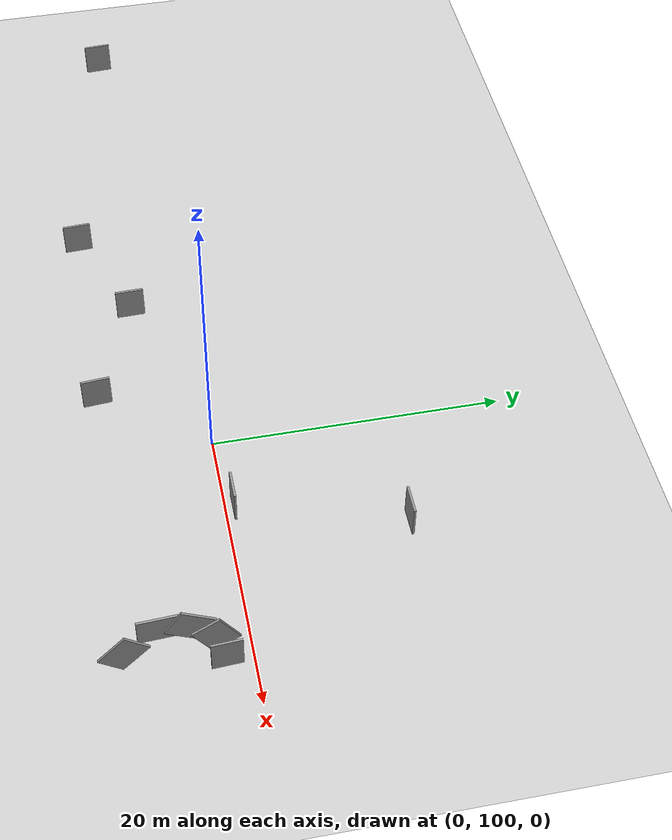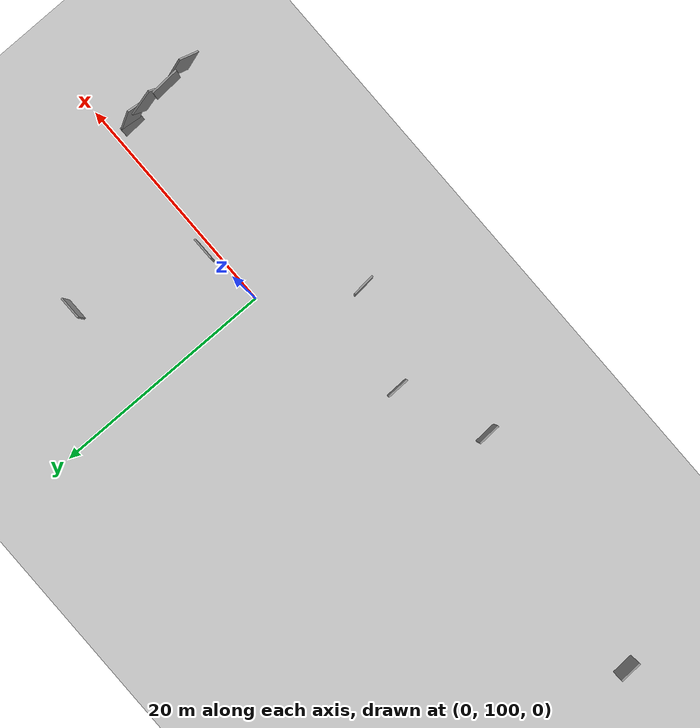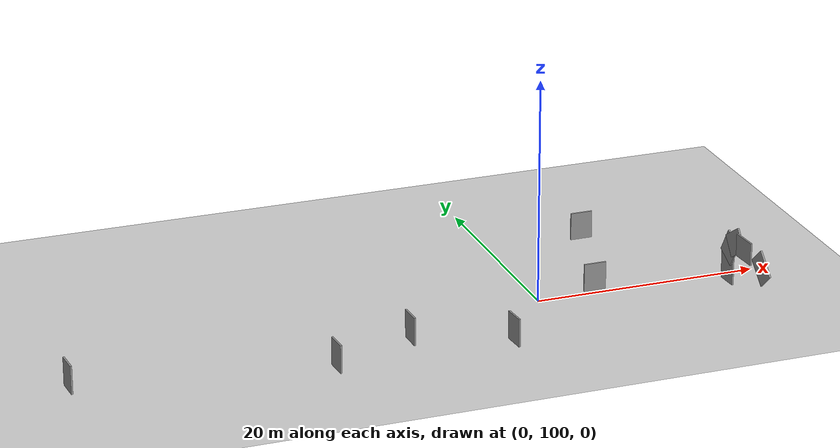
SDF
<sdf version="1.6">
 <world name="default">
  <model name="ground_plane">
   <static>1</static>
   <link name="link">
    <collision name="collision">
     <geometry><plane><normal>0 0 1</normal><size>100 100</size></plane></geometry>
     <surface><friction><ode><mu>100</mu><mu2>50</mu2></ode></friction></surface>
    </collision>
    <visual name="visual">
     <cast_shadows>0</cast_shadows>
     <geometry><plane><normal>0 0 1</normal><size>100 100</size></plane></geometry>
     <material>
      <script><uri>file://media/materials/scripts/gazebo.material</uri><name>Gazebo/Grey</name></script>
     </material>
    </visual>
   </link>
  </model>
  <model name="2mWall_1">
   <pose>8.79972 111.617 0 0 -0 0</pose>
   <link name="Wall_0">
    <collision name="Wall_0_Collision">
     <geometry><box><size>2 0.15 2.5</size></box></geometry>
     <pose>0 0 1.25 0 -0 0</pose>
    </collision>
    <visual name="Wall_0_Visual">
     <pose>0 0 1.25 0 -0 0</pose>
     <geometry><box><size>2 0.15 2.5</size></box></geometry>
     <material>
      <script><uri>file://media/materials/scripts/gazebo.material</uri><name>Gazebo/Grey</name></script>
      <ambient>1 1 1 1</ambient>
     </material>
     <meta><layer>0</layer></meta>
    </visual>
   </link>
   <static>1</static>
  </model>
  <model name="2mWall_2">
   <pose>5.47514 100.58 0 0 -0 0</pose>
   <link name="Wall_0">
    <collision name="Wall_0_Collision">
     <geometry><box><size>2 0.15 2.5</size></box></geometry>
     <pose>0 0 1.25 0 -0 0</pose>
    </collision>
    <visual name="Wall_0_Visual">
     <pose>0 0 1.25 0 -0 0</pose>
     <geometry><box><size>2 0.15 2.5</size></box></geometry>
     <material>
      <script><uri>file://media/materials/scripts/gazebo.material</uri><name>Gazebo/Grey</name></script>
      <ambient>1 1 1 1</ambient>
     </material>
     <meta><layer>0</layer></meta>
    </visual>
   </link>
   <static>1</static>
  </model>
  <model name="2mWall_10_clone">
   <pose>16.9834 98.3399 0 0 0 -1.5162</pose>
   <link name="Wall_0">
    <collision name="Wall_0_Collision">
     <geometry><box><size>2 0.15 2.5</size></box></geometry>
     <pose>0 0 1.25 0 -0 0</pose>
    </collision>
    <visual name="Wall_0_Visual">
     <pose>0 0 1.25 0 -0 0</pose>
     <geometry><box><size>2 0.15 2.5</size></box></geometry>
     <material>
      <script><uri>file://media/materials/scripts/gazebo.material</uri><name>Gazebo/Grey</name></script>
      <ambient>1 1 1 1</ambient>
     </material>
     <meta><layer>0</layer></meta>
    </visual>
   </link>
   <static>1</static>
  </model>
  <model name="2mWall_10_clone_0">
   <pose>16.8368 98.3987 2.26777 0 0.520041 -1.5162</pose>
   <link name="Wall_0">
    <collision name="Wall_0_Collision">
     <geometry><box><size>2 0.15 2.5</size></box></geometry>
     <pose>0 0 1.25 0 -0 0</pose>
    </collision>
    <visual name="Wall_0_Visual">
     <pose>0 0 1.25 0 -0 0</pose>
     <geometry><box><size>2 0.15 2.5</size></box></geometry>
     <material>
      <script><uri>file://media/materials/scripts/gazebo.material</uri><name>Gazebo/Grey</name></script>
      <ambient>1 1 1 1</ambient>
     </material>
     <meta><layer>0</layer></meta>
    </visual>
   </link>
   <static>1</static>
  </model>
  <model name="2mWall_10_clone_0_clone">
   <pose>17.2796 91.409 2.64511 -0 -0.760861 -1.5162</pose>
   <link name="Wall_0">
    <collision name="Wall_0_Collision">
     <geometry><box><size>2 0.15 2.5</size></box></geometry>
     <pose>0 0 1.25 0 -0 0</pose>
    </collision>
    <visual name="Wall_0_Visual">
     <pose>0 0 1.25 0 -0 0</pose>
     <geometry><box><size>2 0.15 2.5</size></box></geometry>
     <material>
      <script><uri>file://media/materials/scripts/gazebo.material</uri><name>Gazebo/Grey</name></script>
      <ambient>1 1 1 1</ambient>
     </material>
     <meta><layer>0</layer></meta>
    </visual>
   </link>
   <static>1</static>
  </model>
  <model name="2mWall_10_clone_0_clone_clone">
   <pose>16.5072 95.6413 4.55309 4e-06 1.56464 -1.5162</pose>
   <link name="Wall_0">
    <collision name="Wall_0_Collision">
     <geometry><box><size>2 0.15 2.5</size></box></geometry>
     <pose>0 0 1.25 0 -0 0</pose>
    </collision>
    <visual name="Wall_0_Visual">
     <pose>0 0 1.25 0 -0 0</pose>
     <geometry><box><size>2 0.15 2.5</size></box></geometry>
     <material>
      <script><uri>file://media/materials/scripts/gazebo.material</uri><name>Gazebo/Grey</name></script>
      <ambient>1 1 1 1</ambient>
     </material>
     <meta><layer>0</layer></meta>
    </visual>
   </link>
   <static>1</static>
  </model>
  <model name="2mWall_10_clone_0_clone_clone_clone">
   <pose>16.5894 97.3522 3.74124 -0 0.981697 -1.5162</pose>
   <link name="Wall_0">
    <collision name="Wall_0_Collision">
     <geometry><box><size>2 0.15 2.5</size></box></geometry>
     <pose>0 0 1.25 0 -0 0</pose>
    </collision>
    <visual name="Wall_0_Visual">
     <pose>0 0 1.25 0 -0 0</pose>
     <geometry><box><size>2 0.15 2.5</size></box></geometry>
     <material>
      <script><uri>file://media/materials/scripts/gazebo.material</uri><name>Gazebo/Grey</name></script>
      <ambient>1 1 1 1</ambient>
     </material>
     <meta><layer>0</layer></meta>
    </visual>
   </link>
   <static>1</static>
  </model>
  <model name="2mWall_0">
   <pose>-20.4994 93.007 0 0 0 -1.51827</pose>
   <link name="Wall_0">
    <collision name="Wall_0_Collision">
     <geometry><box><size>2 0.15 2.5</size></box></geometry>
     <pose>0 0 1.25 0 -0 0</pose>
    </collision>
    <visual name="Wall_0_Visual">
     <pose>0 0 1.25 0 -0 0</pose>
     <geometry><box><size>2 0.15 2.5</size></box></geometry>
     <material>
      <script><uri>file://media/materials/scripts/gazebo.material</uri><name>Gazebo/Grey</name></script>
      <ambient>1 1 1 1</ambient>
     </material>
     <meta><layer>0</layer></meta>
    </visual>
   </link>
   <static>1</static>
  </model>
  <model name="2mWall_28">
   <pose>-42.0241 96.8054 0 0 0 -1.51784</pose>
   <link name="Wall_0">
    <collision name="Wall_0_Collision">
     <geometry><box><size>2 0.15 2.5</size></box></geometry>
     <pose>0 0 1.25 0 -0 0</pose>
    </collision>
    <visual name="Wall_0_Visual">
     <pose>0 0 1.25 0 -0 0</pose>
     <geometry><box><size>2 0.15 2.5</size></box></geometry>
     <material>
      <script><uri>file://media/materials/scripts/gazebo.material</uri><name>Gazebo/Grey</name></script>
      <ambient>1 1 1 1</ambient>
     </material>
     <meta><layer>0</layer></meta>
    </visual>
   </link>
   <static>1</static>
  </model>
  <model name="2mWall_29">
   <pose>-13.0043 96.0747 0 0 0 -1.54417</pose>
   <link name="Wall_0">
    <collision name="Wall_0_Collision">
     <geometry><box><size>2 0.15 2.5</size></box></geometry>
     <pose>0 0 1.25 0 -0 0</pose>
    </collision>
    <visual name="Wall_0_Visual">
     <pose>0 0 1.25 0 -0 0</pose>
     <geometry><box><size>2 0.15 2.5</size></box></geometry>
     <material>
      <script><uri>file://media/materials/scripts/gazebo.material</uri><name>Gazebo/Grey</name></script>
      <ambient>1 1 1 1</ambient>
     </material>
     <meta><layer>0</layer></meta>
    </visual>
   </link>
   <static>1</static>
  </model>
  <model name="2mWall_30">
   <pose>-5.02114 92.7921 0 0 0 -1.49061</pose>
   <link name="Wall_0">
    <collision name="Wall_0_Collision">
     <geometry><box><size>2 0.15 2.5</size></box></geometry>
     <pose>0 0 1.25 0 -0 0</pose>
    </collision>
    <visual name="Wall_0_Visual">
     <pose>0 0 1.25 0 -0 0</pose>
     <geometry><box><size>2 0.15 2.5</size></box></geometry>
     <material>
      <script><uri>file://media/materials/scripts/gazebo.material</uri><name>Gazebo/Grey</name></script>
      <ambient>1 1 1 1</ambient>
     </material>
     <meta><layer>0</layer></meta>
    </visual>
   </link>
   <static>1</static>
  </model>
 </world>
</sdf>
